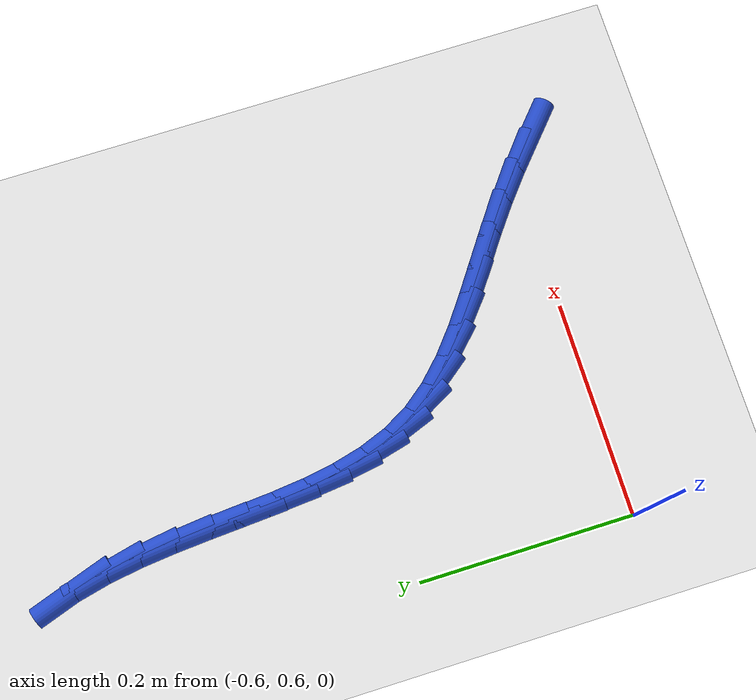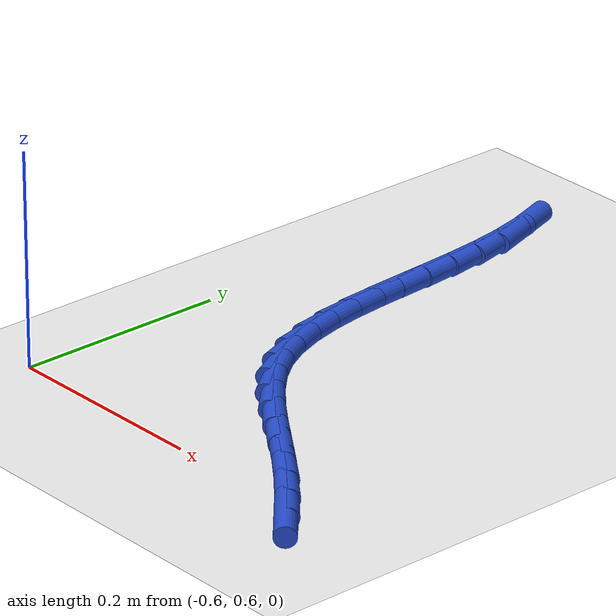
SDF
<sdf version="1.6">
 <world name="default">
  <model name="ground_plane">
   <static>1</static>
   <link name="link">
    <collision name="collision">
     <geometry><plane><normal>0 0 1</normal><size>100 100</size></plane></geometry>
     <surface><friction><ode><mu>100</mu><mu2>50</mu2></ode></friction></surface>
    </collision>
    <visual name="visual">
     <cast_shadows>0</cast_shadows>
     <geometry><plane><normal>0 0 1</normal><size>100 100</size></plane></geometry>
     <material>
      <script><uri>file://media/materials/scripts/gazebo.material</uri><name>Gazebo/WhiteGlow</name></script>
     </material>
    </visual>
   </link>
  </model>
  <model name="line">
   <link name="link_21">
    <pose>-0.2432482627512632 0.5795456479263459 0.01 0 1.57 -0.7265455816710567</pose>
    <collision name="collision">
     <geometry><cylinder><radius>0.01</radius><length>0.08</length></cylinder></geometry>
    </collision>
    <visual name="visual">
     <material>
      <script><name>Gazebo/Blue</name><uri>file://media/materials/scripts/gazebo.material</uri></script>
     </material>
     <geometry><cylinder><radius>0.01</radius><length>0.08</length></cylinder></geometry>
    </visual>
   </link>
   <link name="link_22">
    <pose>-0.267085746669368 0.6007303939710045 0.01 0 1.57 -0.689534089764673</pose>
    <collision name="collision">
     <geometry><cylinder><radius>0.01</radius><length>0.08</length></cylinder></geometry>
    </collision>
    <visual name="visual">
     <material>
      <script><name>Gazebo/Blue</name><uri>file://media/materials/scripts/gazebo.material</uri></script>
     </material>
     <geometry><cylinder><radius>0.01</radius><length>0.08</length></cylinder></geometry>
    </visual>
   </link>
   <link name="link_23">
    <pose>-0.2918160717714628 0.6211218608772711 0.01 0 1.57 -0.6529570581898443</pose>
    <collision name="collision">
     <geometry><cylinder><radius>0.01</radius><length>0.08</length></cylinder></geometry>
    </collision>
    <visual name="visual">
     <material>
      <script><name>Gazebo/Blue</name><uri>file://media/materials/scripts/gazebo.material</uri></script>
     </material>
     <geometry><cylinder><radius>0.01</radius><length>0.08</length></cylinder></geometry>
    </visual>
   </link>
   <link name="link_24">
    <pose>-0.3174054466141527 0.6406946849177441 0.01 0 1.57 -0.6231023706121911</pose>
    <collision name="collision">
     <geometry><cylinder><radius>0.01</radius><length>0.08</length></cylinder></geometry>
    </collision>
    <visual name="visual">
     <material>
      <script><name>Gazebo/Blue</name><uri>file://media/materials/scripts/gazebo.material</uri></script>
     </material>
     <geometry><cylinder><radius>0.01</radius><length>0.08</length></cylinder></geometry>
    </visual>
   </link>
   <link name="link_25">
    <pose>-0.34363913993469325 0.6595462946312632 0.01 0 1.57 -0.6180805681650074</pose>
    <collision name="collision">
     <geometry><cylinder><radius>0.01</radius><length>0.08</length></cylinder></geometry>
    </collision>
    <visual name="visual">
     <material>
      <script><name>Gazebo/Blue</name><uri>file://media/materials/scripts/gazebo.material</uri></script>
     </material>
     <geometry><cylinder><radius>0.01</radius><length>0.08</length></cylinder></geometry>
    </visual>
   </link>
   <link name="link_26">
    <pose>-0.3697769824308998 0.6781306996998544 0.01 0 1.57 -0.641730024394646</pose>
    <collision name="collision">
     <geometry><cylinder><radius>0.01</radius><length>0.08</length></cylinder></geometry>
    </collision>
    <visual name="visual">
     <material>
      <script><name>Gazebo/Blue</name><uri>file://media/materials/scripts/gazebo.material</uri></script>
     </material>
     <geometry><cylinder><radius>0.01</radius><length>0.08</length></cylinder></geometry>
    </visual>
   </link>
   <link name="link_27">
    <pose>-0.3949839637280703 0.696966272366914 0.01 0 1.57 -0.6965194888791109</pose>
    <collision name="collision">
     <geometry><cylinder><radius>0.01</radius><length>0.08</length></cylinder></geometry>
    </collision>
    <visual name="visual">
     <material>
      <script><name>Gazebo/Blue</name><uri>file://media/materials/scripts/gazebo.material</uri></script>
     </material>
     <geometry><cylinder><radius>0.01</radius><length>0.08</length></cylinder></geometry>
    </visual>
   </link>
   <link name="link_28">
    <pose>-0.41842507345150276 0.7165713848758379 0.01 0 1.57 -0.7866632646782865</pose>
    <collision name="collision">
     <geometry><cylinder><radius>0.01</radius><length>0.08</length></cylinder></geometry>
    </collision>
    <visual name="visual">
     <material>
      <script><name>Gazebo/Blue</name><uri>file://media/materials/scripts/gazebo.material</uri></script>
     </material>
     <geometry><cylinder><radius>0.01</radius><length>0.08</length></cylinder></geometry>
    </visual>
   </link>
   <link name="link_29">
    <pose>-0.4392653012264947 0.7374644094700225 0.01 0 1.57 -0.9166633043658768</pose>
    <collision name="collision">
     <geometry><cylinder><radius>0.01</radius><length>0.08</length></cylinder></geometry>
    </collision>
    <visual name="visual">
     <material>
      <script><name>Gazebo/Blue</name><uri>file://media/materials/scripts/gazebo.material</uri></script>
     </material>
     <geometry><cylinder><radius>0.01</radius><length>0.08</length></cylinder></geometry>
    </visual>
   </link>
   <link name="link_30">
    <pose>-0.45666983380540066 0.7601636090838435 0.01 0 1.57 -1.0745274896062629</pose>
    <collision name="collision">
     <geometry><cylinder><radius>0.01</radius><length>0.08</length></cylinder></geometry>
    </collision>
    <visual name="visual">
     <material>
      <script><name>Gazebo/Blue</name><uri>file://media/materials/scripts/gazebo.material</uri></script>
     </material>
     <geometry><cylinder><radius>0.01</radius><length>0.08</length></cylinder></geometry>
    </visual>
   </link>
   <link name="link_31">
    <pose>-0.4701233851103939 0.7850100654852579 0.01 0 1.57 -1.2150561311433625</pose>
    <collision name="collision">
     <geometry><cylinder><radius>0.01</radius><length>0.08</length></cylinder></geometry>
    </collision>
    <visual name="visual">
     <material>
      <script><name>Gazebo/Blue</name><uri>file://media/materials/scripts/gazebo.material</uri></script>
     </material>
     <geometry><cylinder><radius>0.01</radius><length>0.08</length></cylinder></geometry>
    </visual>
   </link>
   <link name="link_32">
    <pose>-0.4800798719454025 0.8118074272806429 0.01 0 1.57 -1.3263532260639526</pose>
    <collision name="collision">
     <geometry><cylinder><radius>0.01</radius><length>0.08</length></cylinder></geometry>
    </collision>
    <visual name="visual">
     <material>
      <script><name>Gazebo/Blue</name><uri>file://media/materials/scripts/gazebo.material</uri></script>
     </material>
     <geometry><cylinder><radius>0.01</radius><length>0.08</length></cylinder></geometry>
    </visual>
   </link>
   <link name="link_33">
    <pose>-0.4871762847262714 0.8402578268387492 0.01 0 1.57 -1.4087264314905321</pose>
    <collision name="collision">
     <geometry><cylinder><radius>0.01</radius><length>0.08</length></cylinder></geometry>
    </collision>
    <visual name="visual">
     <material>
      <script><name>Gazebo/Blue</name><uri>file://media/materials/scripts/gazebo.material</uri></script>
     </material>
     <geometry><cylinder><radius>0.01</radius><length>0.08</length></cylinder></geometry>
    </visual>
   </link>
   <link name="link_34">
    <pose>-0.4920496138688452 0.8700633965283256 0.01 0 1.57 -1.464685364569837</pose>
    <collision name="collision">
     <geometry><cylinder><radius>0.01</radius><length>0.08</length></cylinder></geometry>
    </collision>
    <visual name="visual">
     <material>
      <script><name>Gazebo/Blue</name><uri>file://media/materials/scripts/gazebo.material</uri></script>
     </material>
     <geometry><cylinder><radius>0.01</radius><length>0.08</length></cylinder></geometry>
    </visual>
   </link>
   <link name="link_35">
    <pose>-0.4953368497889686 0.9009262687181222 0.01 0 1.57 -1.4969912704122534</pose>
    <collision name="collision">
     <geometry><cylinder><radius>0.01</radius><length>0.08</length></cylinder></geometry>
    </collision>
    <visual name="visual">
     <material>
      <script><name>Gazebo/Blue</name><uri>file://media/materials/scripts/gazebo.material</uri></script>
     </material>
     <geometry><cylinder><radius>0.01</radius><length>0.08</length></cylinder></geometry>
    </visual>
   </link>
   <link name="link_36">
    <pose>-0.4976749829024867 0.9325485757768893 0.01 0 1.57 -1.5077324297632582</pose>
    <collision name="collision">
     <geometry><cylinder><radius>0.01</radius><length>0.08</length></cylinder></geometry>
    </collision>
    <visual name="visual">
     <material>
      <script><name>Gazebo/Blue</name><uri>file://media/materials/scripts/gazebo.material</uri></script>
     </material>
     <geometry><cylinder><radius>0.01</radius><length>0.08</length></cylinder></geometry>
    </visual>
   </link>
   <link name="link_37">
    <pose>-0.49970100362524383 0.9646324500733761 0.01 0 1.57 -1.4980234955988367</pose>
    <collision name="collision">
     <geometry><cylinder><radius>0.01</radius><length>0.08</length></cylinder></geometry>
    </collision>
    <visual name="visual">
     <material>
      <script><name>Gazebo/Blue</name><uri>file://media/materials/scripts/gazebo.material</uri></script>
     </material>
     <geometry><cylinder><radius>0.01</radius><length>0.08</length></cylinder></geometry>
    </visual>
   </link>
   <link name="link_38">
    <pose>-0.5020519023730848 0.9968800239763324 0.01 0 1.57 -1.4680015450760784</pose>
    <collision name="collision">
     <geometry><cylinder><radius>0.01</radius><length>0.08</length></cylinder></geometry>
    </collision>
    <visual name="visual">
     <material>
      <script><name>Gazebo/Blue</name><uri>file://media/materials/scripts/gazebo.material</uri></script>
     </material>
     <geometry><cylinder><radius>0.01</radius><length>0.08</length></cylinder></geometry>
    </visual>
   </link>
   <link name="link_39">
    <pose>-0.5053646695618547 1.028993429854508 0.01 0 1.57 -1.416988781989304</pose>
    <collision name="collision">
     <geometry><cylinder><radius>0.01</radius><length>0.08</length></cylinder></geometry>
    </collision>
    <visual name="visual">
     <material>
      <script><name>Gazebo/Blue</name><uri>file://media/materials/scripts/gazebo.material</uri></script>
     </material>
     <geometry><cylinder><radius>0.01</radius><length>0.08</length></cylinder></geometry>
    </visual>
   </link>
   <link name="link_40">
    <pose>-0.510276295607398 1.060674800076653 0.01 0 1.57 -1.3438493507840725</pose>
    <collision name="collision">
     <geometry><cylinder><radius>0.01</radius><length>0.08</length></cylinder></geometry>
    </collision>
    <visual name="visual">
     <material>
      <script><name>Gazebo/Blue</name><uri>file://media/materials/scripts/gazebo.material</uri></script>
     </material>
     <geometry><cylinder><radius>0.01</radius><length>0.08</length></cylinder></geometry>
    </visual>
   </link>
   <link name="link_41">
    <pose>-0.5174237709255591 1.0916262670115167 0.01 0 1.57 -1.2476704142732296</pose>
    <collision name="collision">
     <geometry><cylinder><radius>0.01</radius><length>0.08</length></cylinder></geometry>
    </collision>
    <visual name="visual">
     <material>
      <script><name>Gazebo/Blue</name><uri>file://media/materials/scripts/gazebo.material</uri></script>
     </material>
     <geometry><cylinder><radius>0.01</radius><length>0.08</length></cylinder></geometry>
    </visual>
   </link>
  </model>
 </world>
</sdf>
